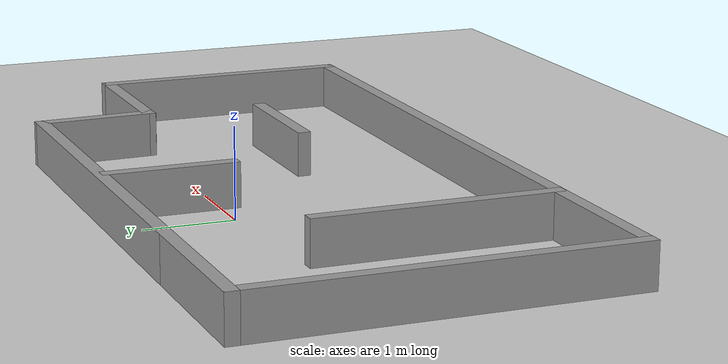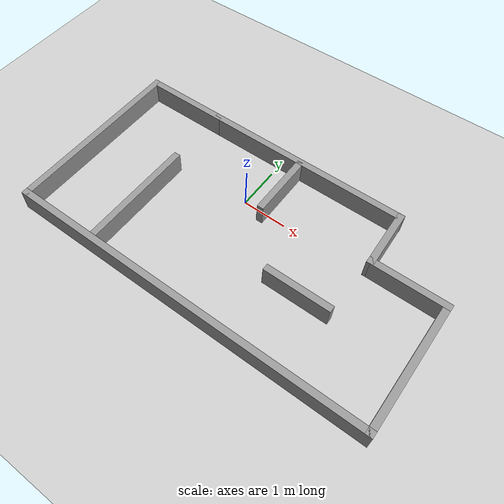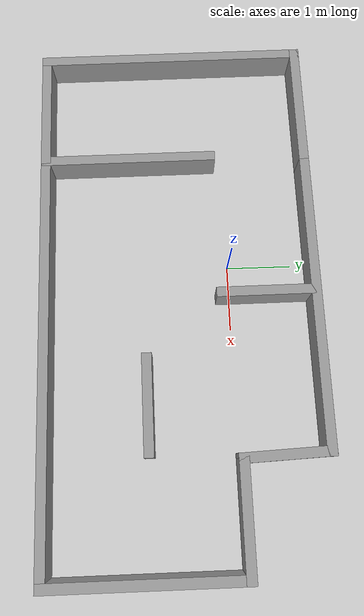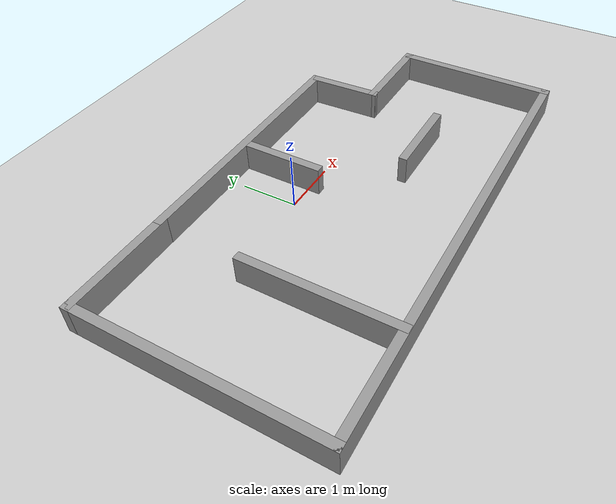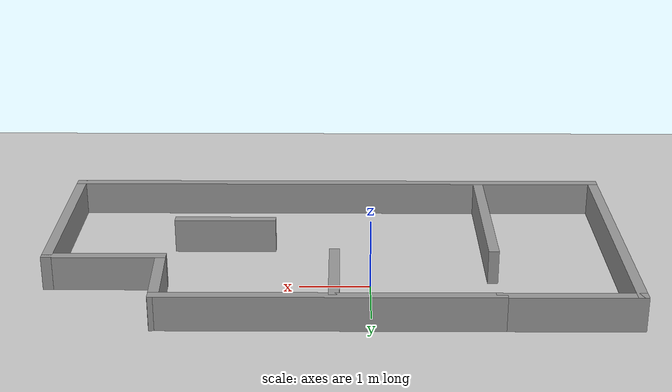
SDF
<?xml version="1.0" ?>
<sdf version="1.4">
  <!-- We use a custom world for the rrbot so that the camera angle is launched correctly -->

  <world name="default">

    <include>
      <uri>model://ground_plane</uri>

    </include>

    <!-- Global light source -->
    <include>
      <uri>model://sun</uri>
    </include>

    <!-- Focus camera on tall pendulum -->
    <gui fullscreen='0'>
      <camera name='user_camera'>
        <pose>4.927360 -4.376610 3.740080 0.000000 0.275643 2.356190</pose>
        <view_controller>orbit</view_controller>
      </camera>
    </gui>

   <!-- walls -->

 <model name='Untitled'>
    <pose frame=''>0.49 -0.758531 -1 0 -0 0</pose>
    <link name='Wall_1'>
      <collision name='Wall_1_Collision'>
        <geometry>
          <box>
            <size>4.75 0.15 0.5</size>
          </box>
        </geometry>
        <pose frame=''>0 0 1.25 0 -0 0</pose>
      </collision>
      <visual name='Wall_1_Visual'>
        <pose frame=''>0 0 1.25 0 -0 0</pose>
        <geometry>
          <box>
            <size>4.75 0.15 0.5</size>
          </box>
        </geometry>
        <material>
          <script>
            <uri>file://media/materials/scripts/gazebo.material</uri>
            <name>Gazebo/Grey</name>
          </script>
          <ambient>1 1 1 1</ambient>
        </material>
        <meta>
          <layer>0</layer>
        </meta>
      </visual>
      <pose frame=''>0.1 2.04853 0 0 -0 3.14159</pose>
    </link>
    <link name='Wall_10'>
      <collision name='Wall_10_Collision'>
        <geometry>
          <box>
            <size>3 0.15 0.5</size>
          </box>
        </geometry>
        <pose frame=''>0 0 1.25 0 -0 0</pose>
      </collision>
      <visual name='Wall_10_Visual'>
        <pose frame=''>0 0 1.25 0 -0 0</pose>
        <geometry>
          <box>
            <size>3 0.15 0.5</size>
          </box>
        </geometry>
        <material>
          <script>
            <uri>file://media/materials/scripts/gazebo.material</uri>
            <name>Gazebo/Grey</name>
          </script>
          <ambient>1 1 1 1</ambient>
        </material>
        <meta>
          <layer>0</layer>
        </meta>
      </visual>
      <pose frame=''>4.05 -0.626469 0 0 -0 1.5708</pose>
    </link>
    <link name='Wall_11'>
      <collision name='Wall_11_Collision'>
        <geometry>
          <box>
            <size>1.75 0.15 0.5</size>
          </box>
        </geometry>
        <pose frame=''>0 0 1.25 0 -0 0</pose>
      </collision>
      <visual name='Wall_11_Visual'>
        <pose frame=''>0 0 1.25 0 -0 0</pose>
        <geometry>
          <box>
            <size>1.75 0.15 0.5</size>
          </box>
        </geometry>
        <material>
          <script>
            <uri>file://media/materials/scripts/gazebo.material</uri>
            <name>Gazebo/Grey</name>
          </script>
          <ambient>1 1 1 1</ambient>
        </material>
        <meta>
          <layer>0</layer>
        </meta>
      </visual>
      <pose frame=''>3.25 0.798531 0 0 -0 3.14159</pose>
    </link>
    <link name='Wall_12'>
      <collision name='Wall_12_Collision'>
        <geometry>
          <box>
            <size>1.401 0.15 0.5</size>
          </box>
        </geometry>
        <pose frame=''>0 0 1.25 0 -0 0</pose>
      </collision>
      <visual name='Wall_12_Visual'>
        <pose frame=''>0 0 1.25 0 -0 0</pose>
        <geometry>
          <box>
            <size>1.401 0.15 0.5</size>
          </box>
        </geometry>
        <material>
          <script>
            <uri>file://media/materials/scripts/gazebo.material</uri>
            <name>Gazebo/Grey</name>
          </script>
          <ambient>1 1 1 1</ambient>
        </material>
        <meta>
          <layer>0</layer>
        </meta>
      </visual>
      <pose frame=''>2.425 1.42353 0 0 -0 1.61078</pose>
    </link>
    <link name='Wall_14'>
      <collision name='Wall_14_Collision'>
        <geometry>
          <box>
            <size>2.75 0.15 0.5</size>
          </box>
        </geometry>
        <pose frame=''>0 0 1.25 0 -0 0</pose>
      </collision>
      <visual name='Wall_14_Visual'>
        <pose frame=''>0 0 1.25 0 -0 0</pose>
        <geometry>
          <box>
            <size>2.75 0.15 0.5</size>
          </box>
        </geometry>
        <material>
          <script>
            <uri>file://media/materials/scripts/gazebo.material</uri>
            <name>Gazebo/Grey</name>
          </script>
          <ambient>1 1 1 1</ambient>
        </material>
        <meta>
          <layer>0</layer>
        </meta>
      </visual>
      <pose frame=''>-2.23478 -0.742773 0 0 -0 1.5708</pose>
    </link>
    <link name='Wall_16'>
      <collision name='Wall_16_Collision'>
        <geometry>
          <box>
            <size>1.5 0.15 0.5</size>
          </box>
        </geometry>
        <pose frame=''>0 0 1.25 0 -0 0</pose>
      </collision>
      <visual name='Wall_16_Visual'>
        <pose frame=''>0 0 1.25 0 -0 0</pose>
        <geometry>
          <box>
            <size>1.5 0.15 0.5</size>
          </box>
        </geometry>
        <material>
          <script>
            <uri>file://media/materials/scripts/gazebo.material</uri>
            <name>Gazebo/Grey</name>
          </script>
          <ambient>1 1 1 1</ambient>
        </material>
        <meta>
          <layer>0</layer>
        </meta>
      </visual>
      <pose frame=''>1.64891 -0.538425 0 0 -0 0</pose>
    </link>
    <link name='Wall_19'>
      <collision name='Wall_19_Collision'>
        <geometry>
          <box>
            <size>1.5 0.15 0.5</size>
          </box>
        </geometry>
        <pose frame=''>0 0 1.25 0 -0 0</pose>
      </collision>
      <visual name='Wall_19_Visual'>
        <pose frame=''>0 0 1.25 0 -0 0</pose>
        <geometry>
          <box>
            <size>1.5 0.15 0.5</size>
          </box>
        </geometry>
        <material>
          <script>
            <uri>file://media/materials/scripts/gazebo.material</uri>
            <name>Gazebo/Grey</name>
          </script>
          <ambient>1 1 1 1</ambient>
        </material>
        <meta>
          <layer>0</layer>
        </meta>
      </visual>
      <pose frame=''>0.017391 1.2931 0 0 -0 1.5708</pose>
    </link>
    <link name='Wall_5'>
      <collision name='Wall_5_Collision'>
        <geometry>
          <box>
            <size>2 0.15 0.5</size>
          </box>
        </geometry>
        <pose frame=''>0 0 1.25 0 -0 0</pose>
      </collision>
      <visual name='Wall_5_Visual'>
        <pose frame=''>0 0 1.25 0 -0 0</pose>
        <geometry>
          <box>
            <size>2 0.15 0.5</size>
          </box>
        </geometry>
        <material>
          <script>
            <uri>file://media/materials/scripts/gazebo.material</uri>
            <name>Gazebo/Grey</name>
          </script>
          <ambient>1 1 1 1</ambient>
        </material>
        <meta>
          <layer>0</layer>
        </meta>
      </visual>
      <pose frame=''>-3.125 2.04853 0 0 -0 3.14159</pose>
    </link>
    <link name='Wall_6'>
      <collision name='Wall_6_Collision'>
        <geometry>
          <box>
            <size>4.25 0.15 0.5</size>
          </box>
        </geometry>
        <pose frame=''>0 0 1.25 0 -0 0</pose>
      </collision>
      <visual name='Wall_6_Visual'>
        <pose frame=''>0 0 1.25 0 -0 0</pose>
        <geometry>
          <box>
            <size>4.25 0.15 0.5</size>
          </box>
        </geometry>
        <material>
          <script>
            <uri>file://media/materials/scripts/gazebo.material</uri>
            <name>Gazebo/Grey</name>
          </script>
          <ambient>1 1 1 1</ambient>
        </material>
        <meta>
          <layer>0</layer>
        </meta>
      </visual>
      <pose frame=''>-4.05 -0.001469 0 0 -0 -1.5708</pose>
    </link>
    <link name='Wall_8'>
      <collision name='Wall_8_Collision'>
        <geometry>
          <box>
            <size>8.25 0.15 0.5</size>
          </box>
        </geometry>
        <pose frame=''>0 0 1.25 0 -0 0</pose>
      </collision>
      <visual name='Wall_8_Visual'>
        <pose frame=''>0 0 1.25 0 -0 0</pose>
        <geometry>
          <box>
            <size>8.25 0.15 0.5</size>
          </box>
        </geometry>
        <material>
          <script>
            <uri>file://media/materials/scripts/gazebo.material</uri>
            <name>Gazebo/Grey</name>
          </script>
          <ambient>1 1 1 1</ambient>
        </material>
        <meta>
          <layer>0</layer>
        </meta>
      </visual>
      <pose frame=''>0 -2.05147 0 0 -0 0</pose>
    </link>
    <static>1</static>
  </model>

  </world>
</sdf>
